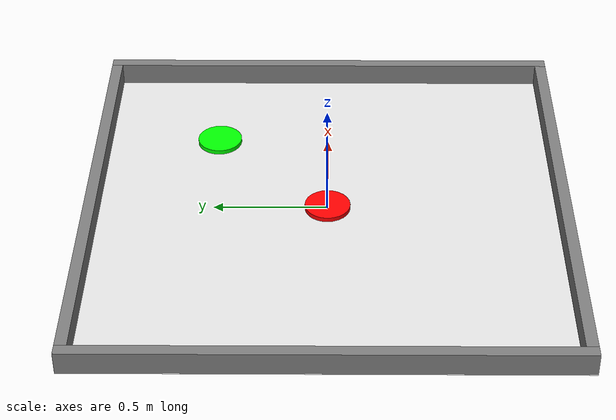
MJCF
<mujoco>
    <!-- put config stuff here -->
    <compiler angle = "degree" coordinate = "local"/>
    <option timestep = "0.001" integrator = "RK4" gravity = "0 0 -9.81"/>

    <default>
        <joint damping = "0.25"/>
    </default>

    <visual>
        <map znear = "0.01" zfar = "50.0"/>
        <quality shadowsize = "4096"/>
        <scale
            framelength = "2.0"
            framewidth = "0.1"
            jointlength = "2.0"
            jointwidth = "0.1"/>
    </visual>

    <!-- this is for the skybox -->
    <asset>
        <texture type = "skybox" builtin = "gradient" rgb1 = "1 1 1" rgb2 = ".6 .8 1" width = "256" height = "256"/>
    </asset>

    <!-- this is where the actual geometries are defined -->
    <worldbody>
        <!-- this is the light -->
        <light name = "overhead_light" specular = "0 0 0" ambient = "0 0 0" diffuse = "0.9 0.9 0.9" pos = "0 0 5"/>

        <!-- this is the camera -->
        <camera name = "overhead_camera" pos = "0 0 3"/>

        <!-- this is the ground plane -->
        <geom name = "ground_plane" type = "plane" contype = "1" conaffinity = "1" pos = "0 0 0" size = "1.05 1.05 0.1" rgba = "0.9 0.9 0.9 1"/>

        <!-- these are the walls -->
        <geom name = "right_wall" type = "box" contype = "1" conaffinity = "1" pos = "1.025 0 0.05" size = "0.025 1.05 0.05"/>
        <geom name = "left_wall" type = "box" contype = "1" conaffinity = "1" pos = "-1.025 0 0.05" size = "0.025 1.05 0.05"/>
        <geom name = "front_wall" type = "box" contype = "1" conaffinity = "1" pos = "0 1.025 0.05" size = "1 0.025 0.05"/>
        <geom name = "back_wall" type = "box" contype = "1" conaffinity = "1" pos = "0 -1.025 0.05" size = "1 0.025 0.05"/>

        <!-- this is the agent -->
        <body name = "agent" pos = "0 0 0.01">
            <!-- joints -->
            <joint name = "z_rotation" type = "hinge" axis = "0 0 1"/>
            <joint name = "x_translate" type = "slide" axis = "1 0 0"/>
            <joint name = "y_translate" type = "slide" axis = "0 1 0"/>

            <!-- main body -->
            <geom type = "cylinder" contype = "1" conaffinity = "1" size = "0.1 0.01" rgba = "1 0 0 1" mass = "0.5"/>

            <!-- add the site for the lidar -->
            <site name = "lidar_site" pos = "0 0 0.01" euler = "-90 0 0"/>
        </body>

        <!-- this  is the task -->
        <geom name = "task" type = "cylinder" contype = "0" conaffinity = "0" pos = "0.5 0.5 0.01" size = "0.1 0.01" rgba = "0 1 0 1"/>
    </worldbody>

    <!-- need to add sensors -->
    <sensor>
        <rangefinder name = "lidar" site = "lidar_site"/>
    </sensor>
</mujoco>
